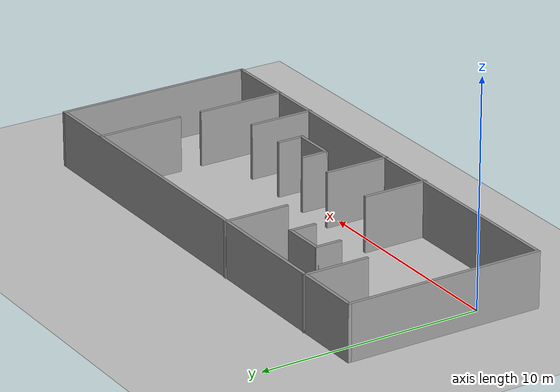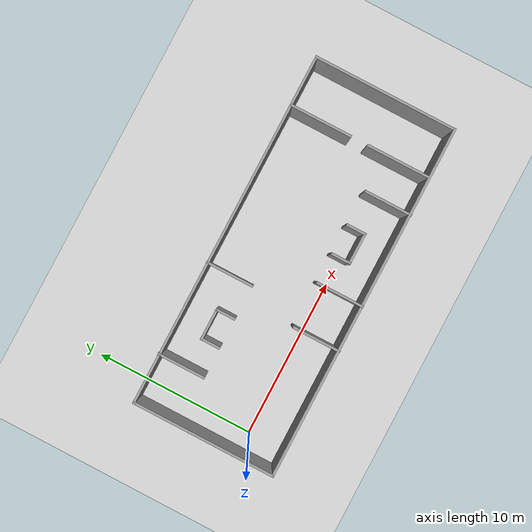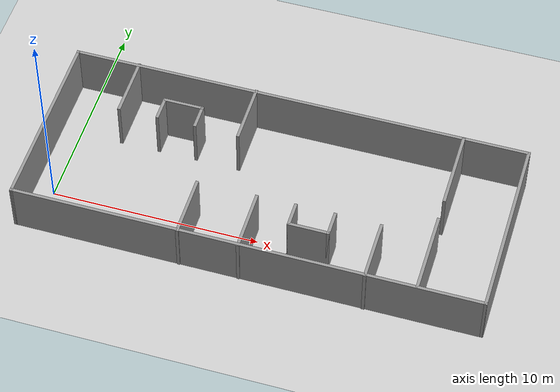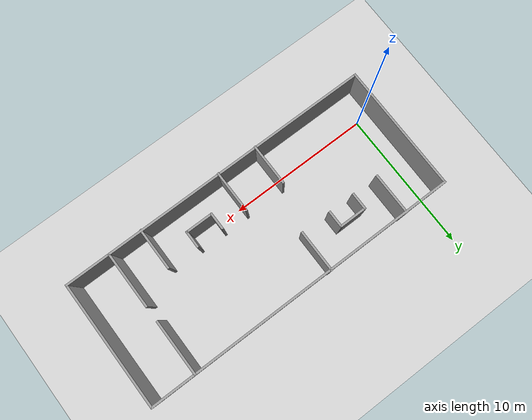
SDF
<sdf version='1.6'>
  <world name='labyrinth1'>
    <light name='sun' type='directional'>
      <cast_shadows>1</cast_shadows>
      <pose frame=''>0 0 10 0 -0 0</pose>
      <diffuse>0.8 0.8 0.8 1</diffuse>
      <specular>0.2 0.2 0.2 1</specular>
      <attenuation>
        <range>1000</range>
        <constant>0.9</constant>
        <linear>0.01</linear>
        <quadratic>0.001</quadratic>
      </attenuation>
      <direction>-0.5 0.1 -0.9</direction>
    </light>
    <model name='ground_plane'>
      <static>1</static>
      <link name='link'>
        <collision name='collision'>
          <geometry>
            <plane>
              <normal>0 0 1</normal>
              <size>100 100</size>
            </plane>
          </geometry>
          <surface>
            <contact>
              <collide_bitmask>65535</collide_bitmask>
              <ode/>
            </contact>
            <friction>
              <ode>
                <mu>100</mu>
                <mu2>50</mu2>
              </ode>
              <torsional>
                <ode/>
              </torsional>
            </friction>
            <bounce/>
          </surface>
          <max_contacts>10</max_contacts>
        </collision>
        <visual name='visual'>
          <cast_shadows>0</cast_shadows>
          <geometry>
            <plane>
              <normal>0 0 1</normal>
              <size>100 100</size>
            </plane>
          </geometry>
          <material>
            <script>
              <uri>file://media/materials/scripts/gazebo.material</uri>
              <name>Gazebo/Grey</name>
            </script>
          </material>
        </visual>
        <self_collide>0</self_collide>
        <enable_wind>0</enable_wind>
        <kinematic>0</kinematic>
      </link>
    </model>
    <gravity>0 0 -9.8</gravity>
    <magnetic_field>6e-06 2.3e-05 -4.2e-05</magnetic_field>
    <atmosphere type='adiabatic'/>
    <physics name='default_physics' default='0' type='ode'>
      <max_step_size>0.001</max_step_size>
      <real_time_factor>1</real_time_factor>
      <real_time_update_rate>1000</real_time_update_rate>
    </physics>
    <scene>
      <ambient>0.4 0.4 0.4 1</ambient>
      <background>0.7 0.7 0.7 1</background>
      <grid>false</grid>
      <origin_visual>false</origin_visual>
      <shadows>1</shadows>
    </scene>
    <audio>
      <device>default</device>
    </audio>
    <wind/>
    <spherical_coordinates>
      <surface_model>EARTH_WGS84</surface_model>
      <latitude_deg>0</latitude_deg>
      <longitude_deg>0</longitude_deg>
      <elevation>0</elevation>
      <heading_deg>0</heading_deg>
    </spherical_coordinates>
    <model name='train_0'>
      <pose frame=''>10.0042 2.30332 0 0 -0 0</pose>
      <link name='Wall_0'>
        <collision name='Wall_0_Collision'>
          <geometry>
            <box>
              <size>22.25 0.15 2.5</size>
            </box>
          </geometry>
          <pose frame=''>0 0 1.25 0 -0 0</pose>
          <max_contacts>10</max_contacts>
          <surface>
            <contact>
              <ode/>
            </contact>
            <bounce/>
            <friction>
              <torsional>
                <ode/>
              </torsional>
              <ode/>
            </friction>
          </surface>
        </collision>
        <visual name='Wall_0_Visual'>
          <pose frame=''>0 0 1.25 0 -0 0</pose>
          <geometry>
            <box>
              <size>22.25 0.15 2.5</size>
            </box>
          </geometry>
          <material>
            <script>
              <uri>file://media/materials/scripts/gazebo.material</uri>
              <name>Gazebo/Grey</name>
            </script>
            <ambient>1 1 1 1</ambient>
          </material>
          <meta>
            <layer>0</layer>
          </meta>
        </visual>
        <pose frame=''>-0 -4.42602 0 0 -0 0</pose>
        <self_collide>0</self_collide>
        <enable_wind>0</enable_wind>
        <kinematic>0</kinematic>
      </link>
      <link name='Wall_10'>
        <collision name='Wall_10_Collision'>
          <geometry>
            <box>
              <size>3 0.15 2.5</size>
            </box>
          </geometry>
          <pose frame=''>0 0 1.25 0 -0 0</pose>
          <max_contacts>10</max_contacts>
          <surface>
            <contact>
              <ode/>
            </contact>
            <bounce/>
            <friction>
              <torsional>
                <ode/>
              </torsional>
              <ode/>
            </friction>
          </surface>
        </collision>
        <visual name='Wall_10_Visual'>
          <pose frame=''>0 0 1.25 0 -0 0</pose>
          <geometry>
            <box>
              <size>3 0.15 2.5</size>
            </box>
          </geometry>
          <material>
            <script>
              <uri>file://media/materials/scripts/gazebo.material</uri>
              <name>Gazebo/Grey</name>
            </script>
            <ambient>1 1 1 1</ambient>
          </material>
          <meta>
            <layer>0</layer>
          </meta>
        </visual>
        <pose frame=''>-2.12131 3.03466 0 0 -0 1.5708</pose>
        <self_collide>0</self_collide>
        <enable_wind>0</enable_wind>
        <kinematic>0</kinematic>
      </link>
      <link name='Wall_16'>
        <collision name='Wall_16_Collision'>
          <geometry>
            <box>
              <size>1.25 0.15 2.5</size>
            </box>
          </geometry>
          <pose frame=''>0 0 1.25 0 -0 0</pose>
          <max_contacts>10</max_contacts>
          <surface>
            <contact>
              <ode/>
            </contact>
            <bounce/>
            <friction>
              <torsional>
                <ode/>
              </torsional>
              <ode/>
            </friction>
          </surface>
        </collision>
        <visual name='Wall_16_Visual'>
          <pose frame=''>0 0 1.25 0 -0 0</pose>
          <geometry>
            <box>
              <size>1.25 0.15 2.5</size>
            </box>
          </geometry>
          <material>
            <script>
              <uri>file://media/materials/scripts/gazebo.material</uri>
              <name>Gazebo/Grey</name>
            </script>
            <ambient>1 1 1 1</ambient>
          </material>
          <meta>
            <layer>0</layer>
          </meta>
        </visual>
        <pose frame=''>-6.08633 2.17814 0 0 -0 -1.5708</pose>
        <self_collide>0</self_collide>
        <enable_wind>0</enable_wind>
        <kinematic>0</kinematic>
      </link>
      <link name='Wall_18'>
        <collision name='Wall_18_Collision'>
          <geometry>
            <box>
              <size>2 0.15 2.5</size>
            </box>
          </geometry>
          <pose frame=''>0 0 1.25 0 -0 0</pose>
          <max_contacts>10</max_contacts>
          <surface>
            <contact>
              <ode/>
            </contact>
            <bounce/>
            <friction>
              <torsional>
                <ode/>
              </torsional>
              <ode/>
            </friction>
          </surface>
        </collision>
        <visual name='Wall_18_Visual'>
          <pose frame=''>0 0 1.25 0 -0 0</pose>
          <geometry>
            <box>
              <size>2 0.15 2.5</size>
            </box>
          </geometry>
          <material>
            <script>
              <uri>file://media/materials/scripts/gazebo.material</uri>
              <name>Gazebo/Grey</name>
            </script>
            <ambient>1 1 1 1</ambient>
          </material>
          <meta>
            <layer>0</layer>
          </meta>
        </visual>
        <pose frame=''>-5.16133 2.72814 0 0 -0 0</pose>
        <self_collide>0</self_collide>
        <enable_wind>0</enable_wind>
        <kinematic>0</kinematic>
      </link>
      <link name='Wall_19'>
        <collision name='Wall_19_Collision'>
          <geometry>
            <box>
              <size>1.25 0.15 2.5</size>
            </box>
          </geometry>
          <pose frame=''>0 0 1.25 0 -0 0</pose>
          <max_contacts>10</max_contacts>
          <surface>
            <contact>
              <ode/>
            </contact>
            <bounce/>
            <friction>
              <torsional>
                <ode/>
              </torsional>
              <ode/>
            </friction>
          </surface>
        </collision>
        <visual name='Wall_19_Visual'>
          <pose frame=''>0 0 1.25 0 -0 0</pose>
          <geometry>
            <box>
              <size>1.25 0.15 2.5</size>
            </box>
          </geometry>
          <material>
            <script>
              <uri>file://media/materials/scripts/gazebo.material</uri>
              <name>Gazebo/Grey</name>
            </script>
            <ambient>1 1 1 1</ambient>
          </material>
          <meta>
            <layer>0</layer>
          </meta>
        </visual>
        <pose frame=''>-4.23633 2.17814 0 0 -0 -1.5708</pose>
        <self_collide>0</self_collide>
        <enable_wind>0</enable_wind>
        <kinematic>0</kinematic>
      </link>
      <link name='Wall_2'>
        <collision name='Wall_2_Collision'>
          <geometry>
            <box>
              <size>9 0.15 2.5</size>
            </box>
          </geometry>
          <pose frame=''>0 0 1.25 0 -0 0</pose>
          <max_contacts>10</max_contacts>
          <surface>
            <contact>
              <ode/>
            </contact>
            <bounce/>
            <friction>
              <torsional>
                <ode/>
              </torsional>
              <ode/>
            </friction>
          </surface>
        </collision>
        <visual name='Wall_2_Visual'>
          <pose frame=''>0 0 1.25 0 -0 0</pose>
          <geometry>
            <box>
              <size>9 0.15 2.5</size>
            </box>
          </geometry>
          <material>
            <script>
              <uri>file://media/materials/scripts/gazebo.material</uri>
              <name>Gazebo/Grey</name>
            </script>
            <ambient>1 1 1 1</ambient>
          </material>
          <meta>
            <layer>0</layer>
          </meta>
        </visual>
        <pose frame=''>11.05 -0.001022 0 0 -0 1.5708</pose>
        <self_collide>0</self_collide>
        <enable_wind>0</enable_wind>
        <kinematic>0</kinematic>
      </link>
      <link name='Wall_26'>
        <collision name='Wall_26_Collision'>
          <geometry>
            <box>
              <size>3 0.15 2.5</size>
            </box>
          </geometry>
          <pose frame=''>0 0 1.25 0 -0 0</pose>
          <max_contacts>10</max_contacts>
          <surface>
            <contact>
              <ode/>
            </contact>
            <bounce/>
            <friction>
              <torsional>
                <ode/>
              </torsional>
              <ode/>
            </friction>
          </surface>
        </collision>
        <visual name='Wall_26_Visual'>
          <pose frame=''>0 0 1.25 0 -0 0</pose>
          <geometry>
            <box>
              <size>3 0.15 2.5</size>
            </box>
          </geometry>
          <material>
            <script>
              <uri>file://media/materials/scripts/gazebo.material</uri>
              <name>Gazebo/Grey</name>
            </script>
            <ambient>1 1 1 1</ambient>
          </material>
          <meta>
            <layer>0</layer>
          </meta>
        </visual>
        <pose frame=''>-0.244506 -3.03466 0 0 -0 1.5708</pose>
        <self_collide>0</self_collide>
        <enable_wind>0</enable_wind>
        <kinematic>0</kinematic>
      </link>
      <link name='Wall_29'>
        <collision name='Wall_29_Collision'>
          <geometry>
            <box>
              <size>3 0.15 2.5</size>
            </box>
          </geometry>
          <pose frame=''>0 0 1.25 0 -0 0</pose>
          <max_contacts>10</max_contacts>
          <surface>
            <contact>
              <ode/>
            </contact>
            <bounce/>
            <friction>
              <torsional>
                <ode/>
              </torsional>
              <ode/>
            </friction>
          </surface>
        </collision>
        <visual name='Wall_29_Visual'>
          <pose frame=''>0 0 1.25 0 -0 0</pose>
          <geometry>
            <box>
              <size>3 0.15 2.5</size>
            </box>
          </geometry>
          <material>
            <script>
              <uri>file://media/materials/scripts/gazebo.material</uri>
              <name>Gazebo/Grey</name>
            </script>
            <ambient>1 1 1 1</ambient>
          </material>
          <meta>
            <layer>0</layer>
          </meta>
        </visual>
        <pose frame=''>5.60549 -3.03466 0 0 -0 -1.5708</pose>
        <self_collide>0</self_collide>
        <enable_wind>0</enable_wind>
        <kinematic>0</kinematic>
      </link>
      <link name='Wall_3'>
        <collision name='Wall_3_Collision'>
          <geometry>
            <box>
              <size>22.25 0.15 2.5</size>
            </box>
          </geometry>
          <pose frame=''>0 0 1.25 0 -0 0</pose>
          <max_contacts>10</max_contacts>
          <surface>
            <contact>
              <ode/>
            </contact>
            <bounce/>
            <friction>
              <torsional>
                <ode/>
              </torsional>
              <ode/>
            </friction>
          </surface>
        </collision>
        <visual name='Wall_3_Visual'>
          <pose frame=''>0 0 1.25 0 -0 0</pose>
          <geometry>
            <box>
              <size>22.25 0.15 2.5</size>
            </box>
          </geometry>
          <material>
            <script>
              <uri>file://media/materials/scripts/gazebo.material</uri>
              <name>Gazebo/Grey</name>
            </script>
            <ambient>1 1 1 1</ambient>
          </material>
          <meta>
            <layer>0</layer>
          </meta>
        </visual>
        <pose frame=''>-0 4.42398 0 0 -0 3.14159</pose>
        <self_collide>0</self_collide>
        <enable_wind>0</enable_wind>
        <kinematic>0</kinematic>
      </link>
      <link name='Wall_32'>
        <collision name='Wall_32_Collision'>
          <geometry>
            <box>
              <size>1.25 0.15 2.5</size>
            </box>
          </geometry>
          <pose frame=''>0 0 1.25 0 -0 0</pose>
          <max_contacts>10</max_contacts>
          <surface>
            <contact>
              <ode/>
            </contact>
            <bounce/>
            <friction>
              <torsional>
                <ode/>
              </torsional>
              <ode/>
            </friction>
          </surface>
        </collision>
        <visual name='Wall_32_Visual'>
          <pose frame=''>0 0 1.25 0 -0 0</pose>
          <geometry>
            <box>
              <size>1.25 0.15 2.5</size>
            </box>
          </geometry>
          <material>
            <script>
              <uri>file://media/materials/scripts/gazebo.material</uri>
              <name>Gazebo/Grey</name>
            </script>
            <ambient>1 1 1 1</ambient>
          </material>
          <meta>
            <layer>0</layer>
          </meta>
        </visual>
        <pose frame=''>1.59188 -2.12934 0 0 -0 1.5708</pose>
        <self_collide>0</self_collide>
        <enable_wind>0</enable_wind>
        <kinematic>0</kinematic>
      </link>
      <link name='Wall_35'>
        <collision name='Wall_35_Collision'>
          <geometry>
            <box>
              <size>1.25 0.15 2.5</size>
            </box>
          </geometry>
          <pose frame=''>0 0 1.25 0 -0 0</pose>
          <max_contacts>10</max_contacts>
          <surface>
            <contact>
              <ode/>
            </contact>
            <bounce/>
            <friction>
              <torsional>
                <ode/>
              </torsional>
              <ode/>
            </friction>
          </surface>
        </collision>
        <visual name='Wall_35_Visual'>
          <pose frame=''>0 0 1.25 0 -0 0</pose>
          <geometry>
            <box>
              <size>1.25 0.15 2.5</size>
            </box>
          </geometry>
          <material>
            <script>
              <uri>file://media/materials/scripts/gazebo.material</uri>
              <name>Gazebo/Grey</name>
            </script>
            <ambient>1 1 1 1</ambient>
          </material>
          <meta>
            <layer>0</layer>
          </meta>
        </visual>
        <pose frame=''>3.44188 -2.12934 0 0 -0 1.5708</pose>
        <self_collide>0</self_collide>
        <enable_wind>0</enable_wind>
        <kinematic>0</kinematic>
      </link>
      <link name='Wall_37'>
        <collision name='Wall_37_Collision'>
          <geometry>
            <box>
              <size>2 0.15 2.5</size>
            </box>
          </geometry>
          <pose frame=''>0 0 1.25 0 -0 0</pose>
          <max_contacts>10</max_contacts>
          <surface>
            <contact>
              <ode/>
            </contact>
            <bounce/>
            <friction>
              <torsional>
                <ode/>
              </torsional>
              <ode/>
            </friction>
          </surface>
        </collision>
        <visual name='Wall_37_Visual'>
          <pose frame=''>0 0 1.25 0 -0 0</pose>
          <geometry>
            <box>
              <size>2 0.15 2.5</size>
            </box>
          </geometry>
          <material>
            <script>
              <uri>file://media/materials/scripts/gazebo.material</uri>
              <name>Gazebo/Grey</name>
            </script>
            <ambient>1 1 1 1</ambient>
          </material>
          <meta>
            <layer>0</layer>
          </meta>
        </visual>
        <pose frame=''>2.51688 -2.67934 0 0 -0 0</pose>
        <self_collide>0</self_collide>
        <enable_wind>0</enable_wind>
        <kinematic>0</kinematic>
      </link>
      <link name='Wall_4'>
        <collision name='Wall_4_Collision'>
          <geometry>
            <box>
              <size>9 0.15 2.5</size>
            </box>
          </geometry>
          <pose frame=''>0 0 1.25 0 -0 0</pose>
          <max_contacts>10</max_contacts>
          <surface>
            <contact>
              <ode/>
            </contact>
            <bounce/>
            <friction>
              <torsional>
                <ode/>
              </torsional>
              <ode/>
            </friction>
          </surface>
        </collision>
        <visual name='Wall_4_Visual'>
          <pose frame=''>0 0 1.25 0 -0 0</pose>
          <geometry>
            <box>
              <size>9 0.15 2.5</size>
            </box>
          </geometry>
          <material>
            <script>
              <uri>file://media/materials/scripts/gazebo.material</uri>
              <name>Gazebo/Grey</name>
            </script>
            <ambient>1 1 1 1</ambient>
          </material>
          <meta>
            <layer>0</layer>
          </meta>
        </visual>
        <pose frame=''>-11.05 -0.001022 0 0 -0 -1.5708</pose>
        <self_collide>0</self_collide>
        <enable_wind>0</enable_wind>
        <kinematic>0</kinematic>
      </link>
      <link name='Wall_44'>
        <collision name='Wall_44_Collision'>
          <geometry>
            <box>
              <size>3.9 0.15 2.5</size>
            </box>
          </geometry>
          <pose frame=''>0 0 1.25 0 -0 0</pose>
          <max_contacts>10</max_contacts>
          <surface>
            <contact>
              <ode/>
            </contact>
            <bounce/>
            <friction>
              <torsional>
                <ode/>
              </torsional>
              <ode/>
            </friction>
          </surface>
        </collision>
        <visual name='Wall_44_Visual'>
          <pose frame=''>0 0 1.25 0 -0 0</pose>
          <geometry>
            <box>
              <size>3.9 0.15 2.5</size>
            </box>
          </geometry>
          <material>
            <script>
              <uri>file://media/materials/scripts/gazebo.material</uri>
              <name>Gazebo/Grey</name>
            </script>
            <ambient>1 1 1 1</ambient>
          </material>
          <meta>
            <layer>0</layer>
          </meta>
        </visual>
        <pose frame=''>7.97049 2.50934 0 0 -0 -1.5708</pose>
        <self_collide>0</self_collide>
        <enable_wind>0</enable_wind>
        <kinematic>0</kinematic>
      </link>
      <link name='Wall_57'>
        <collision name='Wall_57_Collision'>
          <geometry>
            <box>
              <size>4 0.15 2.5</size>
            </box>
          </geometry>
          <pose frame=''>0 0 1.25 0 -0 0</pose>
          <max_contacts>10</max_contacts>
          <surface>
            <contact>
              <ode/>
            </contact>
            <bounce/>
            <friction>
              <torsional>
                <ode/>
              </torsional>
              <ode/>
            </friction>
          </surface>
        </collision>
        <visual name='Wall_57_Visual'>
          <pose frame=''>0 0 1.25 0 -0 0</pose>
          <geometry>
            <box>
              <size>4 0.15 2.5</size>
            </box>
          </geometry>
          <material>
            <script>
              <uri>file://media/materials/scripts/gazebo.material</uri>
              <name>Gazebo/Grey</name>
            </script>
            <ambient>1 1 1 1</ambient>
          </material>
          <meta>
            <layer>0</layer>
          </meta>
        </visual>
        <pose frame=''>7.97052 -2.44763 0 0 -0 1.5708</pose>
        <self_collide>0</self_collide>
        <enable_wind>0</enable_wind>
        <kinematic>0</kinematic>
      </link>
      <link name='Wall_68'>
        <collision name='Wall_68_Collision'>
          <geometry>
            <box>
              <size>3 0.15 2.5</size>
            </box>
          </geometry>
          <pose frame=''>0 0 1.25 0 -0 0</pose>
          <max_contacts>10</max_contacts>
          <surface>
            <contact>
              <ode/>
            </contact>
            <bounce/>
            <friction>
              <torsional>
                <ode/>
              </torsional>
              <ode/>
            </friction>
          </surface>
        </collision>
        <visual name='Wall_68_Visual'>
          <pose frame=''>0 0 1.25 0 -0 0</pose>
          <geometry>
            <box>
              <size>3 0.15 2.5</size>
            </box>
          </geometry>
          <material>
            <script>
              <uri>file://media/materials/scripts/gazebo.material</uri>
              <name>Gazebo/Grey</name>
            </script>
            <ambient>1 1 1 1</ambient>
          </material>
          <meta>
            <layer>0</layer>
          </meta>
        </visual>
        <pose frame=''>-3.09451 -3.03466 0 0 -0 -1.5708</pose>
        <self_collide>0</self_collide>
        <enable_wind>0</enable_wind>
        <kinematic>0</kinematic>
      </link>
      <link name='Wall_8'>
        <collision name='Wall_8_Collision'>
          <geometry>
            <box>
              <size>3 0.15 2.5</size>
            </box>
          </geometry>
          <pose frame=''>0 0 1.25 0 -0 0</pose>
          <max_contacts>10</max_contacts>
          <surface>
            <contact>
              <ode/>
            </contact>
            <bounce/>
            <friction>
              <torsional>
                <ode/>
              </torsional>
              <ode/>
            </friction>
          </surface>
        </collision>
        <visual name='Wall_8_Visual'>
          <pose frame=''>0 0 1.25 0 -0 0</pose>
          <geometry>
            <box>
              <size>3 0.15 2.5</size>
            </box>
          </geometry>
          <material>
            <script>
              <uri>file://media/materials/scripts/gazebo.material</uri>
              <name>Gazebo/Grey</name>
            </script>
            <ambient>1 1 1 1</ambient>
          </material>
          <meta>
            <layer>0</layer>
          </meta>
        </visual>
        <pose frame=''>-7.97131 3.03466 0 0 -0 -1.5708</pose>
        <self_collide>0</self_collide>
        <enable_wind>0</enable_wind>
        <kinematic>0</kinematic>
      </link>
      <static>1</static>
    </model>
  </world>
</sdf>
